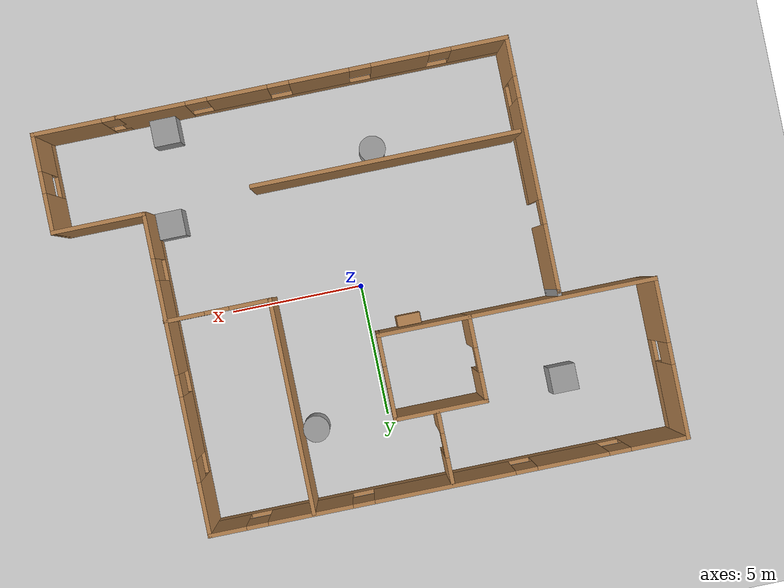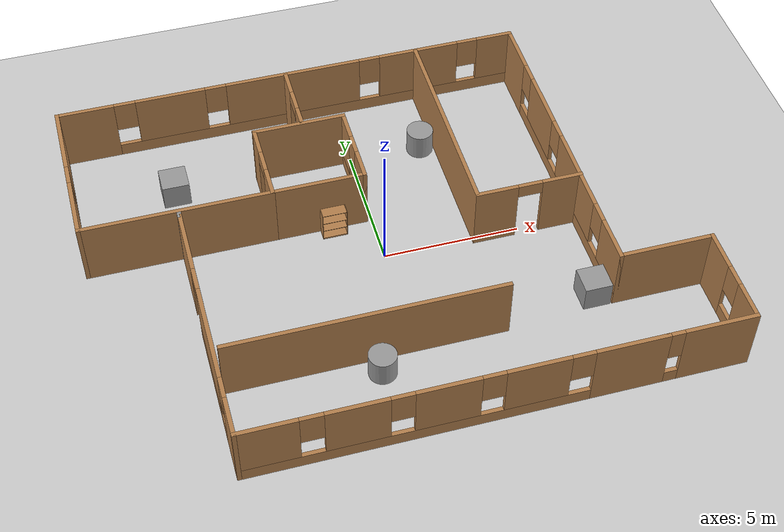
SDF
<sdf version="1.6">
 <world name="default">
  <light name="sun" type="directional">
   <pose>0 0 10 0 -0 0</pose>
   <diffuse>0.8 0.8 0.8 1</diffuse>
   <specular>0.1 0.1 0.1 1</specular>
   <attenuation>
    <range>1000</range>
    <constant>0.9</constant>
    <linear>0.01</linear>
    <quadratic>0.001</quadratic>
   </attenuation>
   <direction>-0.5 0.5 -1</direction>
  </light>
  <model name="ground_plane">
   <static>1</static>
   <link name="link">
    <collision name="collision">
     <geometry><plane><normal>0 0 1</normal><size>100 100</size></plane></geometry>
     <surface><friction><ode><mu>100</mu><mu2>50</mu2></ode></friction></surface>
    </collision>
    <visual name="visual">
     <cast_shadows>0</cast_shadows>
     <geometry><plane><normal>0 0 1</normal><size>100 100</size></plane></geometry>
     <material>
      <script><uri>file://media/materials/scripts/gazebo.material</uri><name>Gazebo/Grey</name></script>
     </material>
    </visual>
   </link>
  </model>
  <gravity>0 0 -9.8</gravity>
  <magnetic_field>6e-06 2.3e-05 -4.2e-05</magnetic_field>
  <atmosphere type="adiabatic"/>
  <physics name="default_physics" default="0" type="ode">
   <max_step_size>0.001</max_step_size>
   <real_time_factor>1</real_time_factor>
   <real_time_update_rate>1000</real_time_update_rate>
  </physics>
  <scene><ambient>0.4 0.4 0.4 1</ambient><background>0.7 0.7 0.7 1</background><shadows>1</shadows></scene>
  <spherical_coordinates>
   <surface_model>EARTH_WGS84</surface_model>
   <latitude_deg>0</latitude_deg>
   <longitude_deg>0</longitude_deg>
   <elevation>0</elevation>
   <heading_deg>0</heading_deg>
  </spherical_coordinates>
  <model name="room3">
   <pose>0.03047 -0.004224 0 0 -0 0</pose>
   <link name="Wall_0">
    <collision name="Wall_0_Collision">
     <geometry><box><size>3.5 0.15 2.5</size></box></geometry>
     <pose>0 0 1.25 0 -0 0</pose>
    </collision>
    <visual name="Wall_0_Visual">
     <pose>0 0 1.25 0 -0 0</pose>
     <geometry><box><size>3.5 0.15 2.5</size></box></geometry>
     <material>
      <script><uri>file://media/materials/scripts/gazebo.material</uri><name>Gazebo/Wood</name></script>
      <ambient>1 1 1 1</ambient>
     </material>
    </visual>
    <pose>-1.95 1.875 0 0 -0 0</pose>
   </link>
   <link name="Wall_1">
    <pose>-0.275 3.425 0 0 -0 1.5708</pose>
    <visual name="Wall_1_Visual_0">
     <pose>-1.01547 0 1.25 0 -0 0</pose>
     <geometry><box><size>1.21906 0.15 2.5</size></box></geometry>
     <material>
      <script><uri>file://media/materials/scripts/gazebo.material</uri><name>Gazebo/Wood</name></script>
      <ambient>1 1 1 1</ambient>
     </material>
    </visual>
    <collision name="Wall_1_Collision_0">
     <geometry><box><size>1.21906 0.15 2.5</size></box></geometry>
     <pose>-1.01547 0 1.25 0 -0 0</pose>
    </collision>
    <visual name="Wall_1_Visual_1">
     <pose>0.609532 0 0.25 0 -0 0</pose>
     <geometry><box><size>2.03094 0.15 0.5</size></box></geometry>
     <material>
      <script><uri>file://media/materials/scripts/gazebo.material</uri><name>Gazebo/Wood</name></script>
      <ambient>1 1 1 1</ambient>
     </material>
    </visual>
    <collision name="Wall_1_Collision_1">
     <geometry><box><size>2.03094 0.15 0.5</size></box></geometry>
     <pose>0.609532 0 0.25 0 -0 0</pose>
    </collision>
    <visual name="Wall_1_Visual_2">
     <pose>1.00953 0 1.5 0 -0 0</pose>
     <geometry><box><size>1.23094 0.15 2</size></box></geometry>
     <material>
      <script><uri>file://media/materials/scripts/gazebo.material</uri><name>Gazebo/Wood</name></script>
      <ambient>1 1 1 1</ambient>
     </material>
    </visual>
    <collision name="Wall_1_Collision_2">
     <geometry><box><size>1.23094 0.15 2</size></box></geometry>
     <pose>1.00953 0 1.5 0 -0 0</pose>
    </collision>
    <visual name="Wall_1_Visual_3">
     <pose>-0.005936 0 1.9 0 -0 0</pose>
     <geometry><box><size>0.8 0.15 1.2</size></box></geometry>
     <material>
      <script><uri>file://media/materials/scripts/gazebo.material</uri><name>Gazebo/Wood</name></script>
      <ambient>1 1 1 1</ambient>
     </material>
    </visual>
    <collision name="Wall_1_Collision_3">
     <geometry><box><size>0.8 0.15 1.2</size></box></geometry>
     <pose>-0.005936 0 1.9 0 -0 0</pose>
    </collision>
   </link>
   <link name="Wall_10">
    <pose>8.925 -7.725 0 0 -0 3.14159</pose>
    <visual name="Wall_10_Visual_0">
     <pose>-0.318173 0 1.25 0 -0 0</pose>
     <geometry><box><size>2.61365 0.15 2.5</size></box></geometry>
     <material>
      <script><uri>file://media/materials/scripts/gazebo.material</uri><name>Gazebo/Wood</name></script>
      <ambient>1 1 1 1</ambient>
     </material>
    </visual>
    <collision name="Wall_10_Collision_0">
     <geometry><box><size>2.61365 0.15 2.5</size></box></geometry>
     <pose>-0.318173 0 1.25 0 -0 0</pose>
    </collision>
    <visual name="Wall_10_Visual_1">
     <pose>1.30683 0 0.25 0 -0 0</pose>
     <geometry><box><size>0.636346 0.15 0.5</size></box></geometry>
     <material>
      <script><uri>file://media/materials/scripts/gazebo.material</uri><name>Gazebo/Wood</name></script>
      <ambient>1 1 1 1</ambient>
     </material>
    </visual>
    <collision name="Wall_10_Collision_1">
     <geometry><box><size>0.636346 0.15 0.5</size></box></geometry>
     <pose>1.30683 0 0.25 0 -0 0</pose>
    </collision>
    <visual name="Wall_10_Visual_2">
     <pose>1.30683 0 1.9 0 -0 0</pose>
     <geometry><box><size>0.636346 0.15 1.2</size></box></geometry>
     <material>
      <script><uri>file://media/materials/scripts/gazebo.material</uri><name>Gazebo/Wood</name></script>
      <ambient>1 1 1 1</ambient>
     </material>
    </visual>
    <collision name="Wall_10_Collision_2">
     <geometry><box><size>0.636346 0.15 1.2</size></box></geometry>
     <pose>1.30683 0 1.9 0 -0 0</pose>
    </collision>
   </link>
   <link name="Wall_11">
    <pose>0.2 -7.725 0 0 -0 3.14159</pose>
    <visual name="Wall_11_Visual_0">
     <pose>-5.95498 0 1.25 0 -0 0</pose>
     <geometry><box><size>2.59005 0.15 2.5</size></box></geometry>
     <material>
      <script><uri>file://media/materials/scripts/gazebo.material</uri><name>Gazebo/Wood</name></script>
      <ambient>1 1 1 1</ambient>
     </material>
    </visual>
    <collision name="Wall_11_Collision_0">
     <geometry><box><size>2.59005 0.15 2.5</size></box></geometry>
     <pose>-5.95498 0 1.25 0 -0 0</pose>
    </collision>
    <visual name="Wall_11_Visual_1">
     <pose>1.29502 0 0.25 0 -0 0</pose>
     <geometry><box><size>11.91 0.15 0.5</size></box></geometry>
     <material>
      <script><uri>file://media/materials/scripts/gazebo.material</uri><name>Gazebo/Wood</name></script>
      <ambient>1 1 1 1</ambient>
     </material>
    </visual>
    <collision name="Wall_11_Collision_1">
     <geometry><box><size>11.91 0.15 0.5</size></box></geometry>
     <pose>1.29502 0 0.25 0 -0 0</pose>
    </collision>
    <visual name="Wall_11_Visual_2">
     <pose>-2.75252 0 1.5 0 -0 0</pose>
     <geometry><box><size>2.21487 0.15 2</size></box></geometry>
     <material>
      <script><uri>file://media/materials/scripts/gazebo.material</uri><name>Gazebo/Wood</name></script>
      <ambient>1 1 1 1</ambient>
     </material>
    </visual>
    <collision name="Wall_11_Collision_2">
     <geometry><box><size>2.21487 0.15 2</size></box></geometry>
     <pose>-2.75252 0 1.5 0 -0 0</pose>
    </collision>
    <visual name="Wall_11_Visual_3">
     <pose>0.262346 0 1.5 0 -0 0</pose>
     <geometry><box><size>2.21487 0.15 2</size></box></geometry>
     <material>
      <script><uri>file://media/materials/scripts/gazebo.material</uri><name>Gazebo/Wood</name></script>
      <ambient>1 1 1 1</ambient>
     </material>
    </visual>
    <collision name="Wall_11_Collision_3">
     <geometry><box><size>2.21487 0.15 2</size></box></geometry>
     <pose>0.262346 0 1.5 0 -0 0</pose>
    </collision>
    <visual name="Wall_11_Visual_4">
     <pose>3.24645 0 1.5 0 -0 0</pose>
     <geometry><box><size>2.15334 0.15 2</size></box></geometry>
     <material>
      <script><uri>file://media/materials/scripts/gazebo.material</uri><name>Gazebo/Wood</name></script>
      <ambient>1 1 1 1</ambient>
     </material>
    </visual>
    <collision name="Wall_11_Collision_4">
     <geometry><box><size>2.15334 0.15 2</size></box></geometry>
     <pose>3.24645 0 1.5 0 -0 0</pose>
    </collision>
    <visual name="Wall_11_Visual_5">
     <pose>6.18656 0 1.5 0 -0 0</pose>
     <geometry><box><size>2.12688 0.15 2</size></box></geometry>
     <material>
      <script><uri>file://media/materials/scripts/gazebo.material</uri><name>Gazebo/Wood</name></script>
      <ambient>1 1 1 1</ambient>
     </material>
    </visual>
    <collision name="Wall_11_Collision_5">
     <geometry><box><size>2.12688 0.15 2</size></box></geometry>
     <pose>6.18656 0 1.5 0 -0 0</pose>
    </collision>
    <visual name="Wall_11_Visual_6">
     <pose>-4.25995 0 1.9 0 -0 0</pose>
     <geometry><box><size>0.8 0.15 1.2</size></box></geometry>
     <material>
      <script><uri>file://media/materials/scripts/gazebo.material</uri><name>Gazebo/Wood</name></script>
      <ambient>1 1 1 1</ambient>
     </material>
    </visual>
    <collision name="Wall_11_Collision_6">
     <geometry><box><size>0.8 0.15 1.2</size></box></geometry>
     <pose>-4.25995 0 1.9 0 -0 0</pose>
    </collision>
    <visual name="Wall_11_Visual_7">
     <pose>-1.24509 0 1.9 0 -0 0</pose>
     <geometry><box><size>0.8 0.15 1.2</size></box></geometry>
     <material>
      <script><uri>file://media/materials/scripts/gazebo.material</uri><name>Gazebo/Wood</name></script>
      <ambient>1 1 1 1</ambient>
     </material>
    </visual>
    <collision name="Wall_11_Collision_7">
     <geometry><box><size>0.8 0.15 1.2</size></box></geometry>
     <pose>-1.24509 0 1.9 0 -0 0</pose>
    </collision>
    <visual name="Wall_11_Visual_8">
     <pose>1.76978 0 1.9 0 -0 0</pose>
     <geometry><box><size>0.8 0.15 1.2</size></box></geometry>
     <material>
      <script><uri>file://media/materials/scripts/gazebo.material</uri><name>Gazebo/Wood</name></script>
      <ambient>1 1 1 1</ambient>
     </material>
    </visual>
    <collision name="Wall_11_Collision_8">
     <geometry><box><size>0.8 0.15 1.2</size></box></geometry>
     <pose>1.76978 0 1.9 0 -0 0</pose>
    </collision>
    <visual name="Wall_11_Visual_9">
     <pose>4.72312 0 1.9 0 -0 0</pose>
     <geometry><box><size>0.8 0.15 1.2</size></box></geometry>
     <material>
      <script><uri>file://media/materials/scripts/gazebo.material</uri><name>Gazebo/Wood</name></script>
      <ambient>1 1 1 1</ambient>
     </material>
    </visual>
    <collision name="Wall_11_Collision_9">
     <geometry><box><size>0.8 0.15 1.2</size></box></geometry>
     <pose>4.72312 0 1.9 0 -0 0</pose>
    </collision>
   </link>
   <link name="Wall_12">
    <pose>-6.975 -3.05 0 0 -0 1.5708</pose>
    <visual name="Wall_12_Visual_0">
     <pose>-3.99878 0 1.25 0 -0 0</pose>
     <geometry><box><size>1.50244 0.15 2.5</size></box></geometry>
     <material>
      <script><uri>file://media/materials/scripts/gazebo.material</uri><name>Gazebo/Wood</name></script>
      <ambient>1 1 1 1</ambient>
     </material>
    </visual>
    <collision name="Wall_12_Collision_0">
     <geometry><box><size>1.50244 0.15 2.5</size></box></geometry>
     <pose>-3.99878 0 1.25 0 -0 0</pose>
    </collision>
    <visual name="Wall_12_Visual_1">
     <pose>3.47266 0 1.25 0 -0 0</pose>
     <geometry><box><size>2.55467 0.15 2.5</size></box></geometry>
     <material>
      <script><uri>file://media/materials/scripts/gazebo.material</uri><name>Gazebo/Wood</name></script>
      <ambient>1 1 1 1</ambient>
     </material>
    </visual>
    <collision name="Wall_12_Collision_1">
     <geometry><box><size>2.55467 0.15 2.5</size></box></geometry>
     <pose>3.47266 0 1.25 0 -0 0</pose>
    </collision>
    <visual name="Wall_12_Visual_2">
     <pose>-0.976116 0 0.25 0 -0 0</pose>
     <geometry><box><size>4.54289 0.15 0.5</size></box></geometry>
     <material>
      <script><uri>file://media/materials/scripts/gazebo.material</uri><name>Gazebo/Wood</name></script>
      <ambient>1 1 1 1</ambient>
     </material>
    </visual>
    <collision name="Wall_12_Collision_2">
     <geometry><box><size>4.54289 0.15 0.5</size></box></geometry>
     <pose>-0.976116 0 0.25 0 -0 0</pose>
    </collision>
    <visual name="Wall_12_Visual_3">
     <pose>-0.576116 0 1.5 0 -0 0</pose>
     <geometry><box><size>3.74289 0.15 2</size></box></geometry>
     <material>
      <script><uri>file://media/materials/scripts/gazebo.material</uri><name>Gazebo/Wood</name></script>
      <ambient>1 1 1 1</ambient>
     </material>
    </visual>
    <collision name="Wall_12_Collision_3">
     <geometry><box><size>3.74289 0.15 2</size></box></geometry>
     <pose>-0.576116 0 1.5 0 -0 0</pose>
    </collision>
    <visual name="Wall_12_Visual_4">
     <pose>-2.84756 0 1.9 0 -0 0</pose>
     <geometry><box><size>0.8 0.15 1.2</size></box></geometry>
     <material>
      <script><uri>file://media/materials/scripts/gazebo.material</uri><name>Gazebo/Wood</name></script>
      <ambient>1 1 1 1</ambient>
     </material>
    </visual>
    <collision name="Wall_12_Collision_4">
     <geometry><box><size>0.8 0.15 1.2</size></box></geometry>
     <pose>-2.84756 0 1.9 0 -0 0</pose>
    </collision>
    <visual name="Wall_12_Visual_5">
     <pose>1.74533 0 2.25 0 -0 0</pose>
     <geometry><box><size>0.9 0.15 0.5</size></box></geometry>
     <material>
      <script><uri>file://media/materials/scripts/gazebo.material</uri><name>Gazebo/Wood</name></script>
      <ambient>1 1 1 1</ambient>
     </material>
    </visual>
    <collision name="Wall_12_Collision_5">
     <geometry><box><size>0.9 0.15 0.5</size></box></geometry>
     <pose>1.74533 0 2.25 0 -0 0</pose>
    </collision>
   </link>
   <link name="Wall_14">
    <collision name="Wall_14_Collision">
     <geometry><box><size>0.15 0.15 2.5</size></box></geometry>
     <pose>0 0 1.25 0 -0 0</pose>
    </collision>
    <visual name="Wall_14_Visual">
     <pose>0 0 1.25 0 -0 0</pose>
     <geometry><box><size>0.15 0.15 2.5</size></box></geometry>
     <material>
      <script><uri>file://media/materials/scripts/gazebo.material</uri><name>Gazebo/Grey</name></script>
      <ambient>1 1 1 1</ambient>
     </material>
    </visual>
    <pose>-6.975 1.625 0 0 -0 0</pose>
   </link>
   <link name="Wall_15">
    <collision name="Wall_15_Collision">
     <geometry><box><size>0.15 0.15 2.5</size></box></geometry>
     <pose>0 0 1.25 0 -0 0</pose>
    </collision>
    <visual name="Wall_15_Visual">
     <pose>0 0 1.25 0 -0 0</pose>
     <geometry><box><size>0.15 0.15 2.5</size></box></geometry>
     <material>
      <script><uri>file://media/materials/scripts/gazebo.material</uri><name>Gazebo/Grey</name></script>
      <ambient>1 1 1 1</ambient>
     </material>
    </visual>
    <pose>-6.975 1.625 0 0 -0 0</pose>
   </link>
   <link name="Wall_16">
    <collision name="Wall_16_Collision">
     <geometry><box><size>0.15 0.15 2.5</size></box></geometry>
     <pose>0 0 1.25 0 -0 0</pose>
    </collision>
    <visual name="Wall_16_Visual">
     <pose>0 0 1.25 0 -0 0</pose>
     <geometry><box><size>0.15 0.15 2.5</size></box></geometry>
     <material>
      <script><uri>file://media/materials/scripts/gazebo.material</uri><name>Gazebo/Grey</name></script>
      <ambient>1 1 1 1</ambient>
     </material>
    </visual>
    <pose>-6.975 1.625 0 0 -0 0</pose>
   </link>
   <link name="Wall_17">
    <collision name="Wall_17_Collision">
     <geometry><box><size>0.25 0.15 2.5</size></box></geometry>
     <pose>0 0 1.25 0 -0 0</pose>
    </collision>
    <visual name="Wall_17_Visual">
     <pose>0 0 1.25 0 -0 0</pose>
     <geometry><box><size>0.25 0.15 2.5</size></box></geometry>
     <material>
      <script><uri>file://media/materials/scripts/gazebo.material</uri><name>Gazebo/Grey</name></script>
      <ambient>1 1 1 1</ambient>
     </material>
    </visual>
    <pose>-6.975 1.675 0 0 -0 1.5708</pose>
   </link>
   <link name="Wall_19">
    <pose>-1.83117 6.35423 0 0 0 -1.5708</pose>
    <visual name="Wall_19_Visual_0">
     <pose>-0.857017 0 1.25 0 -0 0</pose>
     <geometry><box><size>1.03597 0.15 2.5</size></box></geometry>
     <material>
      <script><uri>file://media/materials/scripts/gazebo.material</uri><name>Gazebo/Wood</name></script>
      <ambient>1 1 1 1</ambient>
     </material>
    </visual>
    <collision name="Wall_19_Collision_0">
     <geometry><box><size>1.03597 0.15 2.5</size></box></geometry>
     <pose>-0.857017 0 1.25 0 -0 0</pose>
    </collision>
    <visual name="Wall_19_Visual_1">
     <pose>0.967983 0 1.25 0 -0 0</pose>
     <geometry><box><size>0.814033 0.15 2.5</size></box></geometry>
     <material>
      <script><uri>file://media/materials/scripts/gazebo.material</uri><name>Gazebo/Wood</name></script>
      <ambient>1 1 1 1</ambient>
     </material>
    </visual>
    <collision name="Wall_19_Collision_1">
     <geometry><box><size>0.814033 0.15 2.5</size></box></geometry>
     <pose>0.967983 0 1.25 0 -0 0</pose>
    </collision>
    <visual name="Wall_19_Visual_2">
     <pose>0.110967 0 2.25 0 -0 0</pose>
     <geometry><box><size>0.9 0.15 0.5</size></box></geometry>
     <material>
      <script><uri>file://media/materials/scripts/gazebo.material</uri><name>Gazebo/Wood</name></script>
      <ambient>1 1 1 1</ambient>
     </material>
    </visual>
    <collision name="Wall_19_Collision_2">
     <geometry><box><size>0.9 0.15 0.5</size></box></geometry>
     <pose>0.110967 0 2.25 0 -0 0</pose>
    </collision>
   </link>
   <link name="Wall_2">
    <collision name="Wall_2_Collision">
     <geometry><box><size>3.5 0.15 2.5</size></box></geometry>
     <pose>0 0 1.25 0 -0 0</pose>
    </collision>
    <visual name="Wall_2_Visual">
     <pose>0 0 1.25 0 -0 0</pose>
     <geometry><box><size>3.5 0.15 2.5</size></box></geometry>
     <material>
      <script><uri>file://media/materials/scripts/gazebo.material</uri><name>Gazebo/Wood</name></script>
      <ambient>1 1 1 1</ambient>
     </material>
    </visual>
    <pose>-1.95 4.975 0 0 -0 3.14159</pose>
   </link>
   <link name="Wall_21">
    <collision name="Wall_21_Collision">
     <geometry><box><size>10 0.15 2.5</size></box></geometry>
     <pose>0 0 1.25 0 -0 0</pose>
    </collision>
    <visual name="Wall_21_Visual">
     <pose>0 0 1.25 0 -0 0</pose>
     <geometry><box><size>10 0.15 2.5</size></box></geometry>
     <material>
      <script><uri>file://media/materials/scripts/gazebo.material</uri><name>Gazebo/Wood</name></script>
      <ambient>1 1 1 1</ambient>
     </material>
    </visual>
    <pose>-1.80946 -4.31954 0 0 -0 0</pose>
   </link>
   <link name="Wall_23">
    <collision name="Wall_23_Collision">
     <geometry><box><size>8 0.15 2.5</size></box></geometry>
     <pose>0 0 1.25 0 -0 0</pose>
    </collision>
    <visual name="Wall_23_Visual">
     <pose>0 0 1.25 0 -0 0</pose>
     <geometry><box><size>8 0.15 2.5</size></box></geometry>
     <material>
      <script><uri>file://media/materials/scripts/gazebo.material</uri><name>Gazebo/Wood</name></script>
      <ambient>1 1 1 1</ambient>
     </material>
    </visual>
    <pose>3.29459 3.7534 0 0 0 -1.5708</pose>
   </link>
   <link name="Wall_24">
    <pose>5.21959 -0.171602 0 0 -0 0</pose>
    <visual name="Wall_24_Visual_0">
     <pose>-1.20877 0 1.25 0 -0 0</pose>
     <geometry><box><size>1.58247 0.15 2.5</size></box></geometry>
     <material>
      <script><uri>file://media/materials/scripts/gazebo.material</uri><name>Gazebo/Wood</name></script>
      <ambient>1 1 1 1</ambient>
     </material>
    </visual>
    <collision name="Wall_24_Collision_0">
     <geometry><box><size>1.58247 0.15 2.5</size></box></geometry>
     <pose>-1.20877 0 1.25 0 -0 0</pose>
    </collision>
    <visual name="Wall_24_Visual_1">
     <pose>1.24123 0 1.25 0 -0 0</pose>
     <geometry><box><size>1.51753 0.15 2.5</size></box></geometry>
     <material>
      <script><uri>file://media/materials/scripts/gazebo.material</uri><name>Gazebo/Wood</name></script>
      <ambient>1 1 1 1</ambient>
     </material>
    </visual>
    <collision name="Wall_24_Collision_1">
     <geometry><box><size>1.51753 0.15 2.5</size></box></geometry>
     <pose>1.24123 0 1.25 0 -0 0</pose>
    </collision>
    <visual name="Wall_24_Visual_2">
     <pose>0.032468 0 2.25 0 -0 0</pose>
     <geometry><box><size>0.9 0.15 0.5</size></box></geometry>
     <material>
      <script><uri>file://media/materials/scripts/gazebo.material</uri><name>Gazebo/Wood</name></script>
      <ambient>1 1 1 1</ambient>
     </material>
    </visual>
    <collision name="Wall_24_Collision_2">
     <geometry><box><size>0.9 0.15 0.5</size></box></geometry>
     <pose>0.032468 0 2.25 0 -0 0</pose>
    </collision>
   </link>
   <link name="Wall_3">
    <pose>-3.625 3.425 0 0 0 -1.5708</pose>
    <visual name="Wall_3_Visual_0">
     <pose>-1.05467 0 1.25 0 -0 0</pose>
     <geometry><box><size>1.14065 0.15 2.5</size></box></geometry>
     <material>
      <script><uri>file://media/materials/scripts/gazebo.material</uri><name>Gazebo/Wood</name></script>
      <ambient>1 1 1 1</ambient>
     </material>
    </visual>
    <collision name="Wall_3_Collision_0">
     <geometry><box><size>1.14065 0.15 2.5</size></box></geometry>
     <pose>-1.05467 0 1.25 0 -0 0</pose>
    </collision>
    <visual name="Wall_3_Visual_1">
     <pose>1.02033 0 1.25 0 -0 0</pose>
     <geometry><box><size>1.20934 0.15 2.5</size></box></geometry>
     <material>
      <script><uri>file://media/materials/scripts/gazebo.material</uri><name>Gazebo/Wood</name></script>
      <ambient>1 1 1 1</ambient>
     </material>
    </visual>
    <collision name="Wall_3_Collision_1">
     <geometry><box><size>1.20934 0.15 2.5</size></box></geometry>
     <pose>1.02033 0 1.25 0 -0 0</pose>
    </collision>
    <visual name="Wall_3_Visual_2">
     <pose>-0.034345 0 2.25 0 -0 0</pose>
     <geometry><box><size>0.9 0.15 0.5</size></box></geometry>
     <material>
      <script><uri>file://media/materials/scripts/gazebo.material</uri><name>Gazebo/Wood</name></script>
      <ambient>1 1 1 1</ambient>
     </material>
    </visual>
    <collision name="Wall_3_Collision_2">
     <geometry><box><size>0.9 0.15 0.5</size></box></geometry>
     <pose>-0.034345 0 2.25 0 -0 0</pose>
    </collision>
   </link>
   <link name="Wall_4">
    <collision name="Wall_4_Collision">
     <geometry><box><size>7 0.15 2.5</size></box></geometry>
     <pose>0 0 1.25 0 -0 0</pose>
    </collision>
    <visual name="Wall_4_Visual">
     <pose>0 0 1.25 0 -0 0</pose>
     <geometry><box><size>7 0.15 2.5</size></box></geometry>
     <material>
      <script><uri>file://media/materials/scripts/gazebo.material</uri><name>Gazebo/Wood</name></script>
      <ambient>1 1 1 1</ambient>
     </material>
    </visual>
    <pose>-7.05 1.875 0 0 -0 3.14159</pose>
   </link>
   <link name="Wall_5">
    <pose>-10.475 4.8 0 0 -0 1.5708</pose>
    <visual name="Wall_5_Visual_0">
     <pose>-1.78363 0 1.25 0 -0 0</pose>
     <geometry><box><size>2.43273 0.15 2.5</size></box></geometry>
     <material>
      <script><uri>file://media/materials/scripts/gazebo.material</uri><name>Gazebo/Wood</name></script>
      <ambient>1 1 1 1</ambient>
     </material>
    </visual>
    <collision name="Wall_5_Collision_0">
     <geometry><box><size>2.43273 0.15 2.5</size></box></geometry>
     <pose>-1.78363 0 1.25 0 -0 0</pose>
    </collision>
    <visual name="Wall_5_Visual_1">
     <pose>1.21637 0 0.25 0 -0 0</pose>
     <geometry><box><size>3.56727 0.15 0.5</size></box></geometry>
     <material>
      <script><uri>file://media/materials/scripts/gazebo.material</uri><name>Gazebo/Wood</name></script>
      <ambient>1 1 1 1</ambient>
     </material>
    </visual>
    <collision name="Wall_5_Collision_1">
     <geometry><box><size>3.56727 0.15 0.5</size></box></geometry>
     <pose>1.21637 0 0.25 0 -0 0</pose>
    </collision>
    <visual name="Wall_5_Visual_2">
     <pose>1.61637 0 1.5 0 -0 0</pose>
     <geometry><box><size>2.76727 0.15 2</size></box></geometry>
     <material>
      <script><uri>file://media/materials/scripts/gazebo.material</uri><name>Gazebo/Wood</name></script>
      <ambient>1 1 1 1</ambient>
     </material>
    </visual>
    <collision name="Wall_5_Collision_2">
     <geometry><box><size>2.76727 0.15 2</size></box></geometry>
     <pose>1.61637 0 1.5 0 -0 0</pose>
    </collision>
    <visual name="Wall_5_Visual_3">
     <pose>-0.167269 0 1.9 0 -0 0</pose>
     <geometry><box><size>0.8 0.15 1.2</size></box></geometry>
     <material>
      <script><uri>file://media/materials/scripts/gazebo.material</uri><name>Gazebo/Wood</name></script>
      <ambient>1 1 1 1</ambient>
     </material>
    </visual>
    <collision name="Wall_5_Collision_3">
     <geometry><box><size>0.8 0.15 1.2</size></box></geometry>
     <pose>-0.167269 0 1.9 0 -0 0</pose>
    </collision>
   </link>
   <link name="Wall_6">
    <pose>-1.675 7.725 0 0 -0 0</pose>
    <visual name="Wall_6_Visual_0">
     <pose>-7.78748 0 1.25 0 -0 0</pose>
     <geometry><box><size>2.17504 0.15 2.5</size></box></geometry>
     <material>
      <script><uri>file://media/materials/scripts/gazebo.material</uri><name>Gazebo/Wood</name></script>
      <ambient>1 1 1 1</ambient>
     </material>
    </visual>
    <collision name="Wall_6_Collision_0">
     <geometry><box><size>2.17504 0.15 2.5</size></box></geometry>
     <pose>-7.78748 0 1.25 0 -0 0</pose>
    </collision>
    <visual name="Wall_6_Visual_1">
     <pose>1.08752 0 0.25 0 -0 0</pose>
     <geometry><box><size>15.575 0.15 0.5</size></box></geometry>
     <material>
      <script><uri>file://media/materials/scripts/gazebo.material</uri><name>Gazebo/Wood</name></script>
      <ambient>1 1 1 1</ambient>
     </material>
    </visual>
    <collision name="Wall_6_Collision_1">
     <geometry><box><size>15.575 0.15 0.5</size></box></geometry>
     <pose>1.08752 0 0.25 0 -0 0</pose>
    </collision>
    <visual name="Wall_6_Visual_2">
     <pose>-4.5806 0 1.5 0 -0 0</pose>
     <geometry><box><size>2.63872 0.15 2</size></box></geometry>
     <material>
      <script><uri>file://media/materials/scripts/gazebo.material</uri><name>Gazebo/Wood</name></script>
      <ambient>1 1 1 1</ambient>
     </material>
    </visual>
    <collision name="Wall_6_Collision_2">
     <geometry><box><size>2.63872 0.15 2</size></box></geometry>
     <pose>-4.5806 0 1.5 0 -0 0</pose>
    </collision>
    <visual name="Wall_6_Visual_3">
     <pose>0.132476 0 1.5 0 -0 0</pose>
     <geometry><box><size>5.18743 0.15 2</size></box></geometry>
     <material>
      <script><uri>file://media/materials/scripts/gazebo.material</uri><name>Gazebo/Wood</name></script>
      <ambient>1 1 1 1</ambient>
     </material>
    </visual>
    <collision name="Wall_6_Collision_3">
     <geometry><box><size>5.18743 0.15 2</size></box></geometry>
     <pose>0.132476 0 1.5 0 -0 0</pose>
    </collision>
    <visual name="Wall_6_Visual_4">
     <pose>5.08828 0 1.5 0 -0 0</pose>
     <geometry><box><size>3.12419 0.15 2</size></box></geometry>
     <material>
      <script><uri>file://media/materials/scripts/gazebo.material</uri><name>Gazebo/Wood</name></script>
      <ambient>1 1 1 1</ambient>
     </material>
    </visual>
    <collision name="Wall_6_Collision_4">
     <geometry><box><size>3.12419 0.15 2</size></box></geometry>
     <pose>5.08828 0 1.5 0 -0 0</pose>
    </collision>
    <visual name="Wall_6_Visual_5">
     <pose>8.16269 0 1.5 0 -0 0</pose>
     <geometry><box><size>1.42462 0.15 2</size></box></geometry>
     <material>
      <script><uri>file://media/materials/scripts/gazebo.material</uri><name>Gazebo/Wood</name></script>
      <ambient>1 1 1 1</ambient>
     </material>
    </visual>
    <collision name="Wall_6_Collision_5">
     <geometry><box><size>1.42462 0.15 2</size></box></geometry>
     <pose>8.16269 0 1.5 0 -0 0</pose>
    </collision>
    <visual name="Wall_6_Visual_6">
     <pose>-6.29996 0 1.9 0 -0 0</pose>
     <geometry><box><size>0.8 0.15 1.2</size></box></geometry>
     <material>
      <script><uri>file://media/materials/scripts/gazebo.material</uri><name>Gazebo/Wood</name></script>
      <ambient>1 1 1 1</ambient>
     </material>
    </visual>
    <collision name="Wall_6_Collision_6">
     <geometry><box><size>0.8 0.15 1.2</size></box></geometry>
     <pose>-6.29996 0 1.9 0 -0 0</pose>
    </collision>
    <visual name="Wall_6_Visual_7">
     <pose>-2.86124 0 1.9 0 -0 0</pose>
     <geometry><box><size>0.8 0.15 1.2</size></box></geometry>
     <material>
      <script><uri>file://media/materials/scripts/gazebo.material</uri><name>Gazebo/Wood</name></script>
      <ambient>1 1 1 1</ambient>
     </material>
    </visual>
    <collision name="Wall_6_Collision_7">
     <geometry><box><size>0.8 0.15 1.2</size></box></geometry>
     <pose>-2.86124 0 1.9 0 -0 0</pose>
    </collision>
    <visual name="Wall_6_Visual_8">
     <pose>3.12619 0 1.9 0 -0 0</pose>
     <geometry><box><size>0.8 0.15 1.2</size></box></geometry>
     <material>
      <script><uri>file://media/materials/scripts/gazebo.material</uri><name>Gazebo/Wood</name></script>
      <ambient>1 1 1 1</ambient>
     </material>
    </visual>
    <collision name="Wall_6_Collision_8">
     <geometry><box><size>0.8 0.15 1.2</size></box></geometry>
     <pose>3.12619 0 1.9 0 -0 0</pose>
    </collision>
    <visual name="Wall_6_Visual_9">
     <pose>7.05038 0 1.9 0 -0 0</pose>
     <geometry><box><size>0.8 0.15 1.2</size></box></geometry>
     <material>
      <script><uri>file://media/materials/scripts/gazebo.material</uri><name>Gazebo/Wood</name></script>
      <ambient>1 1 1 1</ambient>
     </material>
    </visual>
    <collision name="Wall_6_Collision_9">
     <geometry><box><size>0.8 0.15 1.2</size></box></geometry>
     <pose>7.05038 0 1.9 0 -0 0</pose>
    </collision>
   </link>
   <link name="Wall_7">
    <pose>7.125 1.8 0 0 0 -1.5708</pose>
    <visual name="Wall_7_Visual_0">
     <pose>-4.98047 0 1.25 0 -0 0</pose>
     <geometry><box><size>2.03907 0.15 2.5</size></box></geometry>
     <material>
      <script><uri>file://media/materials/scripts/gazebo.material</uri><name>Gazebo/Wood</name></script>
      <ambient>1 1 1 1</ambient>
     </material>
    </visual>
    <collision name="Wall_7_Collision_0">
     <geometry><box><size>2.03907 0.15 2.5</size></box></geometry>
     <pose>-4.98047 0 1.25 0 -0 0</pose>
    </collision>
    <visual name="Wall_7_Visual_1">
     <pose>1.01953 0 0.25 0 -0 0</pose>
     <geometry><box><size>9.96093 0.15 0.5</size></box></geometry>
     <material>
      <script><uri>file://media/materials/scripts/gazebo.material</uri><name>Gazebo/Wood</name></script>
      <ambient>1 1 1 1</ambient>
     </material>
    </visual>
    <collision name="Wall_7_Collision_1">
     <geometry><box><size>9.96093 0.15 0.5</size></box></geometry>
     <pose>1.01953 0 0.25 0 -0 0</pose>
    </collision>
    <visual name="Wall_7_Visual_2">
     <pose>-1.98316 0 1.5 0 -0 0</pose>
     <geometry><box><size>2.35554 0.15 2</size></box></geometry>
     <material>
      <script><uri>file://media/materials/scripts/gazebo.material</uri><name>Gazebo/Wood</name></script>
      <ambient>1 1 1 1</ambient>
     </material>
    </visual>
    <collision name="Wall_7_Collision_2">
     <geometry><box><size>2.35554 0.15 2</size></box></geometry>
     <pose>-1.98316 0 1.5 0 -0 0</pose>
    </collision>
    <visual name="Wall_7_Visual_3">
     <pose>1.73564 0 1.5 0 -0 0</pose>
     <geometry><box><size>3.48208 0.15 2</size></box></geometry>
     <material>
      <script><uri>file://media/materials/scripts/gazebo.material</uri><name>Gazebo/Wood</name></script>
      <ambient>1 1 1 1</ambient>
     </material>
    </visual>
    <collision name="Wall_7_Collision_3">
     <geometry><box><size>3.48208 0.15 2</size></box></geometry>
     <pose>1.73564 0 1.5 0 -0 0</pose>
    </collision>
    <visual name="Wall_7_Visual_4">
     <pose>5.13834 0 1.5 0 -0 0</pose>
     <geometry><box><size>1.72332 0.15 2</size></box></geometry>
     <material>
      <script><uri>file://media/materials/scripts/gazebo.material</uri><name>Gazebo/Wood</name></script>
      <ambient>1 1 1 1</ambient>
     </material>
    </visual>
    <collision name="Wall_7_Collision_4">
     <geometry><box><size>1.72332 0.15 2</size></box></geometry>
     <pose>5.13834 0 1.5 0 -0 0</pose>
    </collision>
    <visual name="Wall_7_Visual_5">
     <pose>-3.56093 0 1.9 0 -0 0</pose>
     <geometry><box><size>0.8 0.15 1.2</size></box></geometry>
     <material>
      <script><uri>file://media/materials/scripts/gazebo.material</uri><name>Gazebo/Wood</name></script>
      <ambient>1 1 1 1</ambient>
     </material>
    </visual>
    <collision name="Wall_7_Collision_5">
     <geometry><box><size>0.8 0.15 1.2</size></box></geometry>
     <pose>-3.56093 0 1.9 0 -0 0</pose>
    </collision>
    <visual name="Wall_7_Visual_6">
     <pose>-0.405397 0 1.9 0 -0 0</pose>
     <geometry><box><size>0.8 0.15 1.2</size></box></geometry>
     <material>
      <script><uri>file://media/materials/scripts/gazebo.material</uri><name>Gazebo/Wood</name></script>
      <ambient>1 1 1 1</ambient>
     </material>
    </visual>
    <collision name="Wall_7_Collision_6">
     <geometry><box><size>0.8 0.15 1.2</size></box></geometry>
     <pose>-0.405397 0 1.9 0 -0 0</pose>
    </collision>
    <visual name="Wall_7_Visual_7">
     <pose>3.87668 0 1.9 0 -0 0</pose>
     <geometry><box><size>0.8 0.15 1.2</size></box></geometry>
     <material>
      <script><uri>file://media/materials/scripts/gazebo.material</uri><name>Gazebo/Wood</name></script>
      <ambient>1 1 1 1</ambient>
     </material>
    </visual>
    <collision name="Wall_7_Collision_7">
     <geometry><box><size>0.8 0.15 1.2</size></box></geometry>
     <pose>3.87668 0 1.9 0 -0 0</pose>
    </collision>
   </link>
   <link name="Wall_8">
    <collision name="Wall_8_Collision">
     <geometry><box><size>3.5 0.15 2.5</size></box></geometry>
     <pose>0 0 1.25 0 -0 0</pose>
    </collision>
    <visual name="Wall_8_Visual">
     <pose>0 0 1.25 0 -0 0</pose>
     <geometry><box><size>3.5 0.15 2.5</size></box></geometry>
     <material>
      <script><uri>file://media/materials/scripts/gazebo.material</uri><name>Gazebo/Wood</name></script>
      <ambient>1 1 1 1</ambient>
     </material>
    </visual>
    <pose>8.8 -4.125 0 0 -0 0</pose>
   </link>
   <link name="Wall_9">
    <pose>10.475 -5.925 0 0 0 -1.5708</pose>
    <visual name="Wall_9_Visual_0">
     <pose>-1.11584 0 1.25 0 -0 0</pose>
     <geometry><box><size>1.51832 0.15 2.5</size></box></geometry>
     <material>
      <script><uri>file://media/materials/scripts/gazebo.material</uri><name>Gazebo/Wood</name></script>
      <ambient>1 1 1 1</ambient>
     </material>
    </visual>
    <collision name="Wall_9_Collision_0">
     <geometry><box><size>1.51832 0.15 2.5</size></box></geometry>
     <pose>-1.11584 0 1.25 0 -0 0</pose>
    </collision>
    <visual name="Wall_9_Visual_1">
     <pose>0.759158 0 0.25 0 -0 0</pose>
     <geometry><box><size>2.23168 0.15 0.5</size></box></geometry>
     <material>
      <script><uri>file://media/materials/scripts/gazebo.material</uri><name>Gazebo/Wood</name></script>
      <ambient>1 1 1 1</ambient>
     </material>
    </visual>
    <collision name="Wall_9_Collision_1">
     <geometry><box><size>2.23168 0.15 0.5</size></box></geometry>
     <pose>0.759158 0 0.25 0 -0 0</pose>
    </collision>
    <visual name="Wall_9_Visual_2">
     <pose>1.15916 0 1.5 0 -0 0</pose>
     <geometry><box><size>1.43168 0.15 2</size></box></geometry>
     <material>
      <script><uri>file://media/materials/scripts/gazebo.material</uri><name>Gazebo/Wood</name></script>
      <ambient>1 1 1 1</ambient>
     </material>
    </visual>
    <collision name="Wall_9_Collision_2">
     <geometry><box><size>1.43168 0.15 2</size></box></geometry>
     <pose>1.15916 0 1.5 0 -0 0</pose>
    </collision>
    <visual name="Wall_9_Visual_3">
     <pose>0.043317 0 1.9 0 -0 0</pose>
     <geometry><box><size>0.8 0.15 1.2</size></box></geometry>
     <material>
      <script><uri>file://media/materials/scripts/gazebo.material</uri><name>Gazebo/Wood</name></script>
      <ambient>1 1 1 1</ambient>
     </material>
    </visual>
    <collision name="Wall_9_Collision_3">
     <geometry><box><size>0.8 0.15 1.2</size></box></geometry>
     <pose>0.043317 0 1.9 0 -0 0</pose>
    </collision>
   </link>
   <static>1</static>
  </model>
  <model name="bookshelf">
   <static>1</static>
   <link name="link">
    <inertial><mass>1</mass></inertial>
    <collision name="back">
     <pose>0 0.005 0.6 0 -0 0</pose>
     <geometry><box><size>0.9 0.01 1.2</size></box></geometry>
    </collision>
    <visual name="visual1">
     <pose>0 0.005 0.6 0 -0 0</pose>
     <geometry><box><size>0.9 0.01 1.2</size></box></geometry>
     <material>
      <script><uri>file://media/materials/scripts/gazebo.material</uri><name>Gazebo/Wood</name></script>
     </material>
    </visual>
    <collision name="left_side">
     <pose>0.45 -0.195 0.6 0 -0 0</pose>
     <geometry><box><size>0.02 0.4 1.2</size></box></geometry>
    </collision>
    <visual name="visual2">
     <pose>0.45 -0.195 0.6 0 -0 0</pose>
     <geometry><box><size>0.02 0.4 1.2</size></box></geometry>
     <material>
      <script><uri>file://media/materials/scripts/gazebo.material</uri><name>Gazebo/Wood</name></script>
     </material>
    </visual>
    <collision name="right_side">
     <pose>-0.45 -0.195 0.6 0 -0 0</pose>
     <geometry><box><size>0.02 0.4 1.2</size></box></geometry>
    </collision>
    <visual name="visual3">
     <pose>-0.45 -0.195 0.6 0 -0 0</pose>
     <geometry><box><size>0.02 0.4 1.2</size></box></geometry>
     <material>
      <script><uri>file://media/materials/scripts/gazebo.material</uri><name>Gazebo/Wood</name></script>
     </material>
    </visual>
    <collision name="bottom">
     <pose>0 -0.195 0.03 0 -0 0</pose>
     <geometry><box><size>0.88 0.4 0.06</size></box></geometry>
    </collision>
    <visual name="visual4">
     <pose>0 -0.195 0.03 0 -0 0</pose>
     <geometry><box><size>0.88 0.4 0.06</size></box></geometry>
     <material>
      <script><uri>file://media/materials/scripts/gazebo.material</uri><name>Gazebo/Wood</name></script>
     </material>
    </visual>
    <collision name="top">
     <pose>0 -0.195 1.19 0 -0 0</pose>
     <geometry><box><size>0.88 0.4 0.02</size></box></geometry>
    </collision>
    <visual name="visual5">
     <pose>0 -0.195 1.19 0 -0 0</pose>
     <geometry><box><size>0.88 0.4 0.02</size></box></geometry>
     <material>
      <script><uri>file://media/materials/scripts/gazebo.material</uri><name>Gazebo/Wood</name></script>
     </material>
    </visual>
    <collision name="low_shelf">
     <pose>0 -0.195 0.43 0 -0 0</pose>
     <geometry><box><size>0.88 0.4 0.02</size></box></geometry>
    </collision>
    <visual name="visual6">
     <pose>0 -0.195 0.43 0 -0 0</pose>
     <geometry><box><size>0.88 0.4 0.02</size></box></geometry>
     <material>
      <script><uri>file://media/materials/scripts/gazebo.material</uri><name>Gazebo/Wood</name></script>
     </material>
    </visual>
    <collision name="high_shelf">
     <pose>0 -0.195 0.8 0 -0 0</pose>
     <geometry><box><size>0.88 0.4 0.02</size></box></geometry>
    </collision>
    <visual name="visual7">
     <pose>0 -0.195 0.8 0 -0 0</pose>
     <geometry><box><size>0.88 0.4 0.02</size></box></geometry>
     <material>
      <script><uri>file://media/materials/scripts/gazebo.material</uri><name>Gazebo/Wood</name></script>
     </material>
    </visual>
   </link>
   <pose>-1.48759 1.77498 0 0 -0 0</pose>
  </model>
  <model name="unit_box_0">
   <pose>-6.74431 4.92746 0.499995 -1e-05 0 0</pose>
   <link name="link">
    <inertial>
     <mass>1</mass>
     <inertia>
      <ixx>0.166667</ixx>
      <ixy>0</ixy>
      <ixz>0</ixz>
      <iyy>0.166667</iyy>
      <iyz>0</iyz>
      <izz>0.166667</izz>
     </inertia>
    </inertial>
    <collision name="collision"><geometry><box><size>1 1 1</size></box></geometry></collision>
    <visual name="visual">
     <geometry><box><size>1 1 1</size></box></geometry>
     <material>
      <script><name>Gazebo/Grey</name><uri>file://media/materials/scripts/gazebo.material</uri></script>
     </material>
    </visual>
   </link>
  </model>
  <model name="unit_cylinder_0">
   <pose>-1.44583 -4.9506 0.499992 -3e-06 -4e-06 -0</pose>
   <link name="link">
    <inertial>
     <mass>1</mass>
     <inertia><ixx>0.145833</ixx><ixy>0</ixy><ixz>0</ixz><iyy>0.145833</iyy><iyz>0</iyz><izz>0.125</izz></inertia>
    </inertial>
    <collision name="collision">
     <geometry><cylinder><radius>0.5</radius><length>1</length></cylinder></geometry>
    </collision>
    <visual name="visual">
     <geometry><cylinder><radius>0.5</radius><length>1</length></cylinder></geometry>
     <material>
      <script><name>Gazebo/Grey</name><uri>file://media/materials/scripts/gazebo.material</uri></script>
     </material>
    </visual>
   </link>
  </model>
  <model name="unit_box_1">
   <pose>6.03481 -7.15424 0.5 0 0 -1e-06</pose>
   <link name="link">
    <inertial>
     <mass>1</mass>
     <inertia>
      <ixx>0.166667</ixx>
      <ixy>0</ixy>
      <ixz>0</ixz>
      <iyy>0.166667</iyy>
      <iyz>0</iyz>
      <izz>0.166667</izz>
     </inertia>
    </inertial>
    <collision name="collision"><geometry><box><size>1 1 1</size></box></geometry></collision>
    <visual name="visual">
     <geometry><box><size>1 1 1</size></box></geometry>
     <material>
      <script><name>Gazebo/Grey</name><uri>file://media/materials/scripts/gazebo.material</uri></script>
     </material>
    </visual>
   </link>
  </model>
  <model name="unit_box_2">
   <pose>6.52853 -3.69956 0.499995 0 1e-05 0</pose>
   <link name="link">
    <inertial>
     <mass>1</mass>
     <inertia>
      <ixx>0.166667</ixx>
      <ixy>0</ixy>
      <ixz>0</ixz>
      <iyy>0.166667</iyy>
      <iyz>0</iyz>
      <izz>0.166667</izz>
     </inertia>
    </inertial>
    <collision name="collision"><geometry><box><size>1 1 1</size></box></geometry></collision>
    <visual name="visual">
     <geometry><box><size>1 1 1</size></box></geometry>
     <material>
      <script><name>Gazebo/Grey</name><uri>file://media/materials/scripts/gazebo.material</uri></script>
     </material>
    </visual>
   </link>
  </model>
  <model name="unit_cylinder_1">
   <pose>2.71994 4.9128 0.499997 3e-06 4e-06 -0</pose>
   <link name="link">
    <inertial>
     <mass>1</mass>
     <inertia><ixx>0.145833</ixx><ixy>0</ixy><ixz>0</ixz><iyy>0.145833</iyy><iyz>0</iyz><izz>0.125</izz></inertia>
    </inertial>
    <collision name="collision">
     <geometry><cylinder><radius>0.5</radius><length>1</length></cylinder></geometry>
    </collision>
    <visual name="visual">
     <geometry><cylinder><radius>0.5</radius><length>1</length></cylinder></geometry>
     <material>
      <script><name>Gazebo/Grey</name><uri>file://media/materials/scripts/gazebo.material</uri></script>
     </material>
    </visual>
   </link>
  </model>
 </world>
</sdf>
